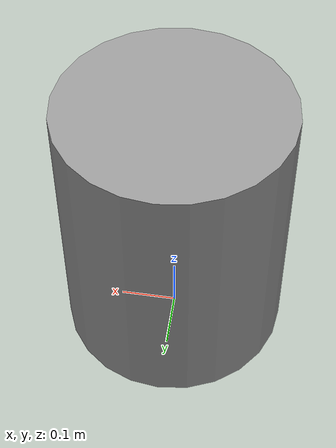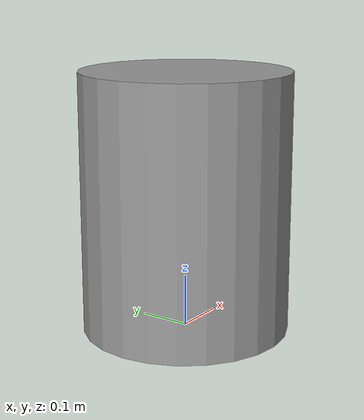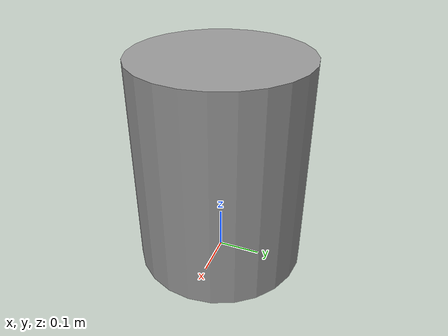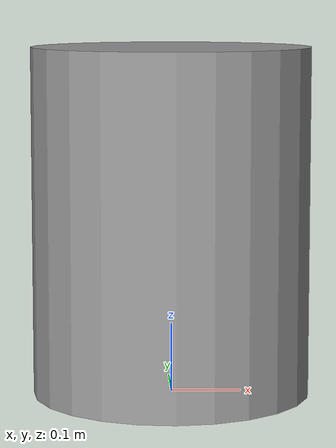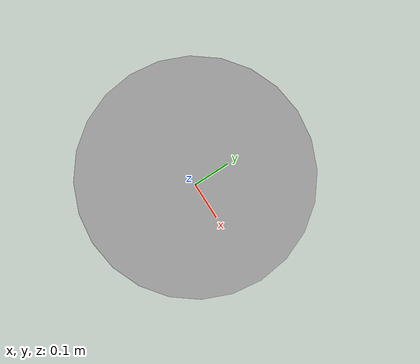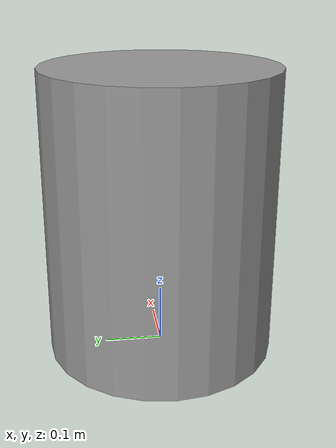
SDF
<?xml version='1.0'?>
<sdf version='1.5'>
  <model name='project_pillar'>
    <pose frame=''>0 0 0 0 0 0</pose>
    <link name='cylinder_obstacle'>
      <collision name='cylinder_obstacle_Collision'>
        <geometry>
          <cylinder>
            <radius>0.2</radius>
            <length>0.5</length>
          </cylinder>
        </geometry>
        <pose frame=''>0 0 0.25 0 0 0</pose>
        <surface>
          <friction>
            <ode>
              <mu>0</mu>
              <mu2>0</mu2>
              <slip1>0</slip1>
              <slip2>0</slip2>
            </ode>
          </friction>
        </surface>
      </collision>
      <visual name='cylinder_obstacle_Visual'>
        <geometry>
          <cylinder>
            <radius>0.2</radius>
            <length>0.5</length>
          </cylinder>
        </geometry>
        <material>
          <script>
            <uri>file://media/materials/scripts/gazebo.material</uri>
            <name>Gazebo/Grey</name>
          </script>
          <ambient>1 1 1 1</ambient>
        </material>
        <pose frame=''>0 0 0.25 0 0 0</pose>
      </visual>
    </link>
    <static>1</static>
  </model>
</sdf>
